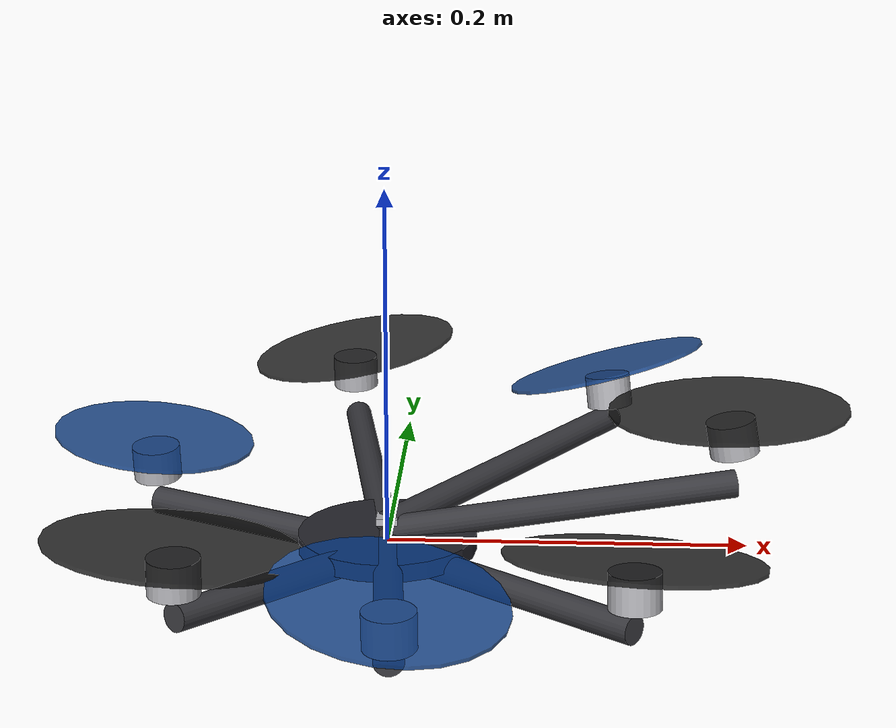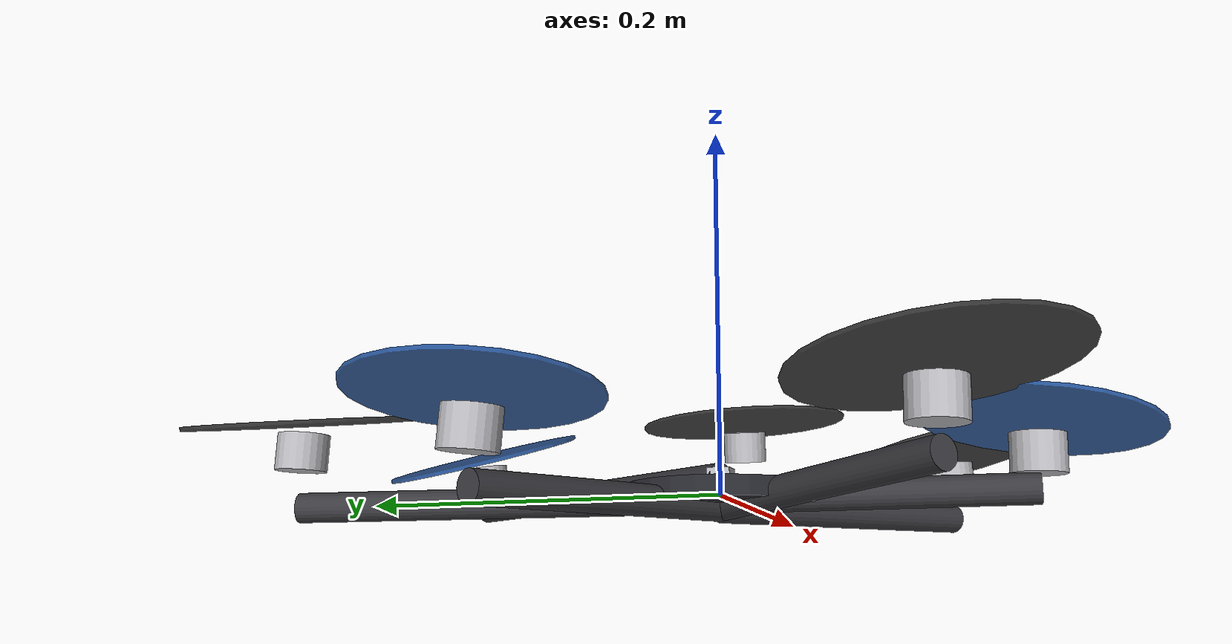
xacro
<?xml version="1.0"?>
<robot name="asymmetric_7rotor_drone" xmlns:xacro="http://www.ros.org/wiki/xacro">

  <material name="mat_core"><color rgba="0.15 0.15 0.18 1.0"/></material>
  <material name="mat_arm"><color rgba="0.22 0.22 0.24 1.0"/></material>
  <material name="mat_motor"><color rgba="0.70 0.70 0.72 1.0"/></material>
  <material name="mat_rotor_ccw"><color rgba="0.10 0.10 0.10 0.85"/></material>
  <material name="mat_rotor_cw"><color rgba="0.05 0.25 0.55 0.85"/></material>

  <xacro:macro name="inertial_box" params="mass x y z">
    <inertial><origin xyz="0 0 0" rpy="0 0 0"/><mass value="${mass}"/><inertia ixx="${mass*(y*y + z*z)/12.0}" ixy="0.0" ixz="0.0" iyy="${mass*(x*x + z*z)/12.0}" iyz="0.0" izz="${mass*(x*x + y*y)/12.0}"/></inertial>
  </xacro:macro>
  <xacro:macro name="inertial_cylinder_z" params="mass radius length">
    <inertial><origin xyz="0 0 0" rpy="0 0 0"/><mass value="${mass}"/><inertia ixx="${mass*(3*radius*radius + length*length)/12.0}" ixy="0.0" ixz="0.0" iyy="${mass*(3*radius*radius + length*length)/12.0}" iyz="0.0" izz="${0.5*mass*radius*radius}"/></inertial>
  </xacro:macro>

  <link name="base_link">
    <visual><geometry><cylinder radius="0.050000" length="0.010000"/></geometry><material name="mat_core"/></visual>
    <collision><geometry><cylinder radius="0.050000" length="0.010000"/></geometry></collision>
    <xacro:inertial_cylinder_z mass="0.400000" radius="0.050000" length="0.010000"/>
  </link>

  <link name="imu_link">
    <visual><origin xyz="0 0 0.012" rpy="0 0 0"/><geometry><box size="0.012 0.012 0.004"/></geometry><material name="mat_motor"/></visual>
    <collision><origin xyz="0 0 0.012" rpy="0 0 0"/><geometry><box size="0.012 0.012 0.004"/></geometry></collision>
    <xacro:inertial_box mass="0.005" x="0.012" y="0.012" z="0.004"/>
  </link>
  <joint name="imu_joint" type="fixed"><parent link="base_link"/><child link="imu_link"/><origin xyz="0 0 0" rpy="0 0 0"/></joint>

  <link name="arm_1_arm_link">
    <visual><origin xyz="0.099272 0 0" rpy="0 1.57079632679 0"/><geometry><cylinder radius="0.008000" length="0.198544"/></geometry><material name="mat_arm"/></visual>
    <collision><origin xyz="0.099272 0 0" rpy="0 1.57079632679 0"/><geometry><cylinder radius="0.008000" length="0.198544"/></geometry></collision>
    <xacro:inertial_cylinder_z mass="0.035738" radius="0.008000" length="0.198544"/>
  </link>
  <joint name="base_to_arm_1_arm_joint" type="fixed"><parent link="base_link"/><child link="arm_1_arm_link"/><origin xyz="0.000000 0.000000 0.005573" rpy="0.006071 -0.099886 0.157147"/></joint>

  <link name="arm_1_motor_link">
    <visual><geometry><cylinder radius="0.014000" length="0.020000"/></geometry><material name="mat_motor"/></visual>
    <collision><geometry><cylinder radius="0.014000" length="0.020000"/></geometry></collision>
    <xacro:inertial_cylinder_z mass="0.060000" radius="0.014000" length="0.020000"/>
  </link>
  <joint name="arm_1_arm_to_motor_joint" type="fixed"><parent link="arm_1_arm_link"/><child link="arm_1_motor_link"/><origin xyz="0.198544 0.000000 0.028302" rpy="-0.028135 -0.076884 0.171639"/></joint>

  <link name="arm_1_rotor_link">
    <visual><origin xyz="0 0 0" rpy="0.000000 0.000000 0.000000"/><geometry><cylinder radius="0.067475" length="0.002000"/></geometry><material name="mat_rotor_ccw"/></visual>
    <collision><origin xyz="0 0 0" rpy="0.000000 0.000000 0.000000"/><geometry><cylinder radius="0.067475" length="0.002000"/></geometry></collision>
    <xacro:inertial_cylinder_z mass="0.010000" radius="0.010000" length="0.006000"/>
  </link>
  <joint name="arm_1_motor_to_rotor_joint" type="fixed"><parent link="arm_1_motor_link"/><child link="arm_1_rotor_link"/><origin xyz="0.000000 0.000000 0.016000" rpy="-0.056569 0.149666 -0.265245"/></joint>

  <link name="arm_2_arm_link">
    <visual><origin xyz="0.114510 0 0" rpy="0 1.57079632679 0"/><geometry><cylinder radius="0.008000" length="0.229021"/></geometry><material name="mat_arm"/></visual>
    <collision><origin xyz="0.114510 0 0" rpy="0 1.57079632679 0"/><geometry><cylinder radius="0.008000" length="0.229021"/></geometry></collision>
    <xacro:inertial_cylinder_z mass="0.041224" radius="0.008000" length="0.229021"/>
  </link>
  <joint name="base_to_arm_2_arm_joint" type="fixed"><parent link="base_link"/><child link="arm_2_arm_link"/><origin xyz="0.000000 0.000000 0.008939" rpy="-0.082869 -0.002802 0.976907"/></joint>

  <link name="arm_2_motor_link">
    <visual><geometry><cylinder radius="0.014000" length="0.020000"/></geometry><material name="mat_motor"/></visual>
    <collision><geometry><cylinder radius="0.014000" length="0.020000"/></geometry></collision>
    <xacro:inertial_cylinder_z mass="0.060000" radius="0.014000" length="0.020000"/>
  </link>
  <joint name="arm_2_arm_to_motor_joint" type="fixed"><parent link="arm_2_arm_link"/><child link="arm_2_motor_link"/><origin xyz="0.229021 0.000000 0.017797" rpy="-0.068926 0.041696 0.106334"/></joint>

  <link name="arm_2_rotor_link">
    <visual><origin xyz="0 0 0" rpy="0.000000 0.000000 0.000000"/><geometry><cylinder radius="0.062129" length="0.002000"/></geometry><material name="mat_rotor_cw"/></visual>
    <collision><origin xyz="0 0 0" rpy="0.000000 0.000000 0.000000"/><geometry><cylinder radius="0.062129" length="0.002000"/></geometry></collision>
    <xacro:inertial_cylinder_z mass="0.010000" radius="0.010000" length="0.006000"/>
  </link>
  <joint name="arm_2_motor_to_rotor_joint" type="fixed"><parent link="arm_2_motor_link"/><child link="arm_2_rotor_link"/><origin xyz="0.000000 0.000000 0.016000" rpy="-0.152230 -0.049255 -0.140966"/></joint>

  <link name="arm_3_arm_link">
    <visual><origin xyz="0.114259 0 0" rpy="0 1.57079632679 0"/><geometry><cylinder radius="0.008000" length="0.228519"/></geometry><material name="mat_arm"/></visual>
    <collision><origin xyz="0.114259 0 0" rpy="0 1.57079632679 0"/><geometry><cylinder radius="0.008000" length="0.228519"/></geometry></collision>
    <xacro:inertial_cylinder_z mass="0.041133" radius="0.008000" length="0.228519"/>
  </link>
  <joint name="base_to_arm_3_arm_joint" type="fixed"><parent link="base_link"/><child link="arm_3_arm_link"/><origin xyz="0.000000 0.000000 -0.001537" rpy="-0.057640 0.007859 1.728060"/></joint>

  <link name="arm_3_motor_link">
    <visual><geometry><cylinder radius="0.014000" length="0.020000"/></geometry><material name="mat_motor"/></visual>
    <collision><geometry><cylinder radius="0.014000" length="0.020000"/></geometry></collision>
    <xacro:inertial_cylinder_z mass="0.060000" radius="0.014000" length="0.020000"/>
  </link>
  <joint name="arm_3_arm_to_motor_joint" type="fixed"><parent link="arm_3_arm_link"/><child link="arm_3_motor_link"/><origin xyz="0.228519 0.000000 0.029932" rpy="0.036789 -0.047816 -0.075313"/></joint>

  <link name="arm_3_rotor_link">
    <visual><origin xyz="0 0 0" rpy="0.000000 0.000000 0.000000"/><geometry><cylinder radius="0.064748" length="0.002000"/></geometry><material name="mat_rotor_ccw"/></visual>
    <collision><origin xyz="0 0 0" rpy="0.000000 0.000000 0.000000"/><geometry><cylinder radius="0.064748" length="0.002000"/></geometry></collision>
    <xacro:inertial_cylinder_z mass="0.010000" radius="0.010000" length="0.006000"/>
  </link>
  <joint name="arm_3_motor_to_rotor_joint" type="fixed"><parent link="arm_3_motor_link"/><child link="arm_3_rotor_link"/><origin xyz="0.000000 0.000000 0.016000" rpy="-0.148051 0.060672 0.010546"/></joint>

  <link name="arm_4_arm_link">
    <visual><origin xyz="0.080445 0 0" rpy="0 1.57079632679 0"/><geometry><cylinder radius="0.008000" length="0.160890"/></geometry><material name="mat_arm"/></visual>
    <collision><origin xyz="0.080445 0 0" rpy="0 1.57079632679 0"/><geometry><cylinder radius="0.008000" length="0.160890"/></geometry></collision>
    <xacro:inertial_cylinder_z mass="0.028960" radius="0.008000" length="0.160890"/>
  </link>
  <joint name="base_to_arm_4_arm_joint" type="fixed"><parent link="base_link"/><child link="arm_4_arm_link"/><origin xyz="0.000000 0.000000 -0.005506" rpy="-0.032383 0.017662 2.651013"/></joint>

  <link name="arm_4_motor_link">
    <visual><geometry><cylinder radius="0.014000" length="0.020000"/></geometry><material name="mat_motor"/></visual>
    <collision><geometry><cylinder radius="0.014000" length="0.020000"/></geometry></collision>
    <xacro:inertial_cylinder_z mass="0.060000" radius="0.014000" length="0.020000"/>
  </link>
  <joint name="arm_4_arm_to_motor_joint" type="fixed"><parent link="arm_4_arm_link"/><child link="arm_4_motor_link"/><origin xyz="0.160890 0.000000 0.024835" rpy="-0.043182 -0.044765 -0.171603"/></joint>

  <link name="arm_4_rotor_link">
    <visual><origin xyz="0 0 0" rpy="0.000000 0.000000 0.000000"/><geometry><cylinder radius="0.058434" length="0.002000"/></geometry><material name="mat_rotor_cw"/></visual>
    <collision><origin xyz="0 0 0" rpy="0.000000 0.000000 0.000000"/><geometry><cylinder radius="0.058434" length="0.002000"/></geometry></collision>
    <xacro:inertial_cylinder_z mass="0.010000" radius="0.010000" length="0.006000"/>
  </link>
  <joint name="arm_4_motor_to_rotor_joint" type="fixed"><parent link="arm_4_motor_link"/><child link="arm_4_rotor_link"/><origin xyz="0.000000 0.000000 0.016000" rpy="0.132570 -0.089584 0.215781"/></joint>

  <link name="arm_5_arm_link">
    <visual><origin xyz="0.078189 0 0" rpy="0 1.57079632679 0"/><geometry><cylinder radius="0.008000" length="0.156377"/></geometry><material name="mat_arm"/></visual>
    <collision><origin xyz="0.078189 0 0" rpy="0 1.57079632679 0"/><geometry><cylinder radius="0.008000" length="0.156377"/></geometry></collision>
    <xacro:inertial_cylinder_z mass="0.028148" radius="0.008000" length="0.156377"/>
  </link>
  <joint name="base_to_arm_5_arm_joint" type="fixed"><parent link="base_link"/><child link="arm_5_arm_link"/><origin xyz="0.000000 0.000000 -0.005240" rpy="0.033796 -0.057153 4.017637"/></joint>

  <link name="arm_5_motor_link">
    <visual><geometry><cylinder radius="0.014000" length="0.020000"/></geometry><material name="mat_motor"/></visual>
    <collision><geometry><cylinder radius="0.014000" length="0.020000"/></geometry></collision>
    <xacro:inertial_cylinder_z mass="0.060000" radius="0.014000" length="0.020000"/>
  </link>
  <joint name="arm_5_arm_to_motor_joint" type="fixed"><parent link="arm_5_arm_link"/><child link="arm_5_motor_link"/><origin xyz="0.156377 0.000000 0.022617" rpy="-0.058830 0.069682 0.028417"/></joint>

  <link name="arm_5_rotor_link">
    <visual><origin xyz="0 0 0" rpy="0.000000 0.000000 0.000000"/><geometry><cylinder radius="0.066769" length="0.002000"/></geometry><material name="mat_rotor_ccw"/></visual>
    <collision><origin xyz="0 0 0" rpy="0.000000 0.000000 0.000000"/><geometry><cylinder radius="0.066769" length="0.002000"/></geometry></collision>
    <xacro:inertial_cylinder_z mass="0.010000" radius="0.010000" length="0.006000"/>
  </link>
  <joint name="arm_5_motor_to_rotor_joint" type="fixed"><parent link="arm_5_motor_link"/><child link="arm_5_rotor_link"/><origin xyz="0.000000 0.000000 0.016000" rpy="0.056553 -0.149672 -0.185754"/></joint>

  <link name="arm_6_arm_link">
    <visual><origin xyz="0.079362 0 0" rpy="0 1.57079632679 0"/><geometry><cylinder radius="0.008000" length="0.158724"/></geometry><material name="mat_arm"/></visual>
    <collision><origin xyz="0.079362 0 0" rpy="0 1.57079632679 0"/><geometry><cylinder radius="0.008000" length="0.158724"/></geometry></collision>
    <xacro:inertial_cylinder_z mass="0.028570" radius="0.008000" length="0.158724"/>
  </link>
  <joint name="base_to_arm_6_arm_joint" type="fixed"><parent link="base_link"/><child link="arm_6_arm_link"/><origin xyz="0.000000 0.000000 -0.001379" rpy="-0.015284 -0.006595 4.790997"/></joint>

  <link name="arm_6_motor_link">
    <visual><geometry><cylinder radius="0.014000" length="0.020000"/></geometry><material name="mat_motor"/></visual>
    <collision><geometry><cylinder radius="0.014000" length="0.020000"/></geometry></collision>
    <xacro:inertial_cylinder_z mass="0.060000" radius="0.014000" length="0.020000"/>
  </link>
  <joint name="arm_6_arm_to_motor_joint" type="fixed"><parent link="arm_6_arm_link"/><child link="arm_6_motor_link"/><origin xyz="0.158724 0.000000 0.017378" rpy="0.036652 0.027738 0.193666"/></joint>

  <link name="arm_6_rotor_link">
    <visual><origin xyz="0 0 0" rpy="0.000000 0.000000 0.000000"/><geometry><cylinder radius="0.061039" length="0.002000"/></geometry><material name="mat_rotor_cw"/></visual>
    <collision><origin xyz="0 0 0" rpy="0.000000 0.000000 0.000000"/><geometry><cylinder radius="0.061039" length="0.002000"/></geometry></collision>
    <xacro:inertial_cylinder_z mass="0.010000" radius="0.010000" length="0.006000"/>
  </link>
  <joint name="arm_6_motor_to_rotor_joint" type="fixed"><parent link="arm_6_motor_link"/><child link="arm_6_rotor_link"/><origin xyz="0.000000 0.000000 0.016000" rpy="-0.085140 0.135467 0.217004"/></joint>

  <link name="arm_7_arm_link">
    <visual><origin xyz="0.086190 0 0" rpy="0 1.57079632679 0"/><geometry><cylinder radius="0.008000" length="0.172379"/></geometry><material name="mat_arm"/></visual>
    <collision><origin xyz="0.086190 0 0" rpy="0 1.57079632679 0"/><geometry><cylinder radius="0.008000" length="0.172379"/></geometry></collision>
    <xacro:inertial_cylinder_z mass="0.031028" radius="0.008000" length="0.172379"/>
  </link>
  <joint name="base_to_arm_7_arm_joint" type="fixed"><parent link="base_link"/><child link="arm_7_arm_link"/><origin xyz="0.000000 0.000000 -0.006196" rpy="-0.010277 -0.015624 5.605730"/></joint>

  <link name="arm_7_motor_link">
    <visual><geometry><cylinder radius="0.014000" length="0.020000"/></geometry><material name="mat_motor"/></visual>
    <collision><geometry><cylinder radius="0.014000" length="0.020000"/></geometry></collision>
    <xacro:inertial_cylinder_z mass="0.060000" radius="0.014000" length="0.020000"/>
  </link>
  <joint name="arm_7_arm_to_motor_joint" type="fixed"><parent link="arm_7_arm_link"/><child link="arm_7_motor_link"/><origin xyz="0.172379 0.000000 0.022204" rpy="-0.035433 -0.040031 0.169306"/></joint>

  <link name="arm_7_rotor_link">
    <visual><origin xyz="0 0 0" rpy="0.000000 0.000000 0.000000"/><geometry><cylinder radius="0.067920" length="0.002000"/></geometry><material name="mat_rotor_ccw"/></visual>
    <collision><origin xyz="0 0 0" rpy="0.000000 0.000000 0.000000"/><geometry><cylinder radius="0.067920" length="0.002000"/></geometry></collision>
    <xacro:inertial_cylinder_z mass="0.010000" radius="0.010000" length="0.006000"/>
  </link>
  <joint name="arm_7_motor_to_rotor_joint" type="fixed"><parent link="arm_7_motor_link"/><child link="arm_7_rotor_link"/><origin xyz="0.000000 0.000000 0.016000" rpy="-0.152068 -0.049754 -0.269647"/></joint>

</robot>
